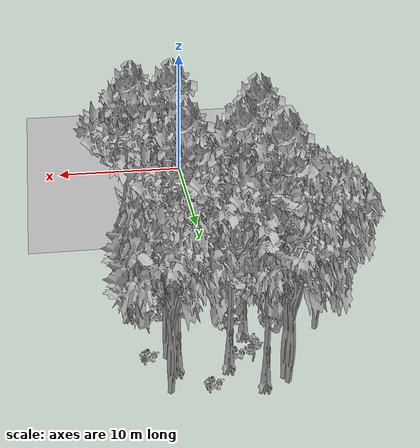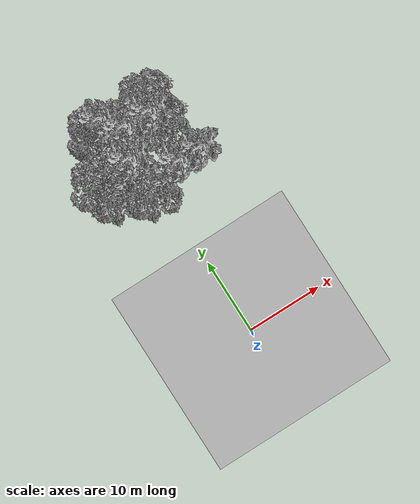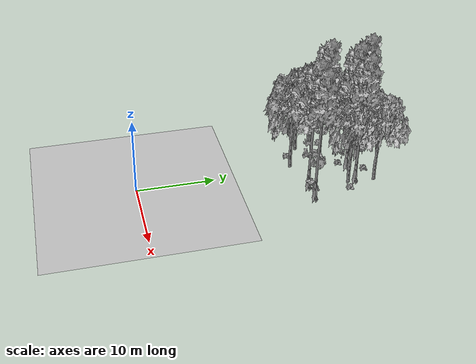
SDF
<sdf version="1.7">
 <world name="default">
  <model name="ground_plane">
   <static>1</static>
   <link name="link">
    <collision name="collision">
     <pose>-50 0 0 0 -0 0</pose>
     <geometry><plane><normal>0 0 1</normal><size>80 80</size></plane></geometry>
     <surface><contact><ode><min_depth>0.01</min_depth><max_vel>0</max_vel></ode></contact></surface>
    </collision>
    <visual name="grass">
     <cast_shadows>0</cast_shadows>
     <geometry>
      <mesh>
       <scale>0.46714285714285714 0.46714285714285714 0.1</scale>
       <uri>file://grass_plane/meshes/grass_plane.dae</uri>
      </mesh>
     </geometry>
    </visual>
   </link>
  </model>
  <model name="Tree 9">
   <static>1</static>
   <pose>4.20310431743556 26.323700282341363 0 1.57079 -0 0</pose>
   <link name="link">
    <collision name="collision">
     <geometry><mesh><scale>3.5 5 3.5</scale><uri>model://tree_2/meshes/tree_2.obj</uri></mesh></geometry>
    </collision>
    <visual name="visual">
     <geometry><mesh><scale>3.5 5 3.5</scale><uri>model://tree_2/meshes/tree_2.obj</uri></mesh></geometry>
    </visual>
   </link>
  </model>
  <model name="Tree 42">
   <static>1</static>
   <pose>4.334344160294933 29.720558247666077 0 1.57079 -0 0</pose>
   <link name="link">
    <collision name="collision">
     <geometry><mesh><scale>3.5 5 3.5</scale><uri>model://tree_2/meshes/tree_2.obj</uri></mesh></geometry>
    </collision>
    <visual name="visual">
     <geometry><mesh><scale>3.5 5 3.5</scale><uri>model://tree_2/meshes/tree_2.obj</uri></mesh></geometry>
    </visual>
   </link>
  </model>
  <model name="Tree 131">
   <static>1</static>
   <pose>-1.1855709193471284 29.613246702547173 0 1.57079 -0 0</pose>
   <link name="link">
    <collision name="collision">
     <geometry><mesh><scale>3.5 5 3.5</scale><uri>model://tree_9/meshes/tree_9.obj</uri></mesh></geometry>
    </collision>
    <visual name="visual">
     <geometry><mesh><scale>3.5 5 3.5</scale><uri>model://tree_9/meshes/tree_9.obj</uri></mesh></geometry>
    </visual>
   </link>
  </model>
  <model name="Tree 136">
   <static>1</static>
   <pose>-0.6912097463750655 20.208502103878736 0 1.57079 -0 0</pose>
   <link name="link">
    <collision name="collision">
     <geometry><mesh><scale>3.5 5 3.5</scale><uri>model://tree_2/meshes/tree_2.obj</uri></mesh></geometry>
    </collision>
    <visual name="visual">
     <geometry><mesh><scale>3.5 5 3.5</scale><uri>model://tree_2/meshes/tree_2.obj</uri></mesh></geometry>
    </visual>
   </link>
  </model>
  <model name="Tree 152">
   <static>1</static>
   <pose>-0.833139650515939 24.281821733613555 0 1.57079 -0 0</pose>
   <link name="link">
    <collision name="collision">
     <geometry><mesh><scale>3.5 5 3.5</scale><uri>model://tree_9/meshes/tree_9.obj</uri></mesh></geometry>
    </collision>
    <visual name="visual">
     <geometry><mesh><scale>3.5 5 3.5</scale><uri>model://tree_9/meshes/tree_9.obj</uri></mesh></geometry>
    </visual>
   </link>
  </model>
  <model name="Tree 175">
   <static>1</static>
   <pose>0.622133506033137 27.52053535422644 0 1.57079 -0 0</pose>
   <link name="link">
    <collision name="collision">
     <geometry><mesh><scale>3.5 5 3.5</scale><uri>model://tree_9/meshes/tree_9.obj</uri></mesh></geometry>
    </collision>
    <visual name="visual">
     <geometry><mesh><scale>3.5 5 3.5</scale><uri>model://tree_9/meshes/tree_9.obj</uri></mesh></geometry>
    </visual>
   </link>
  </model>
  <model name="Tree 253">
   <static>1</static>
   <pose>-5.551509483812843 24.38612946989393 0 1.57079 -0 0</pose>
   <link name="link">
    <collision name="collision">
     <geometry><mesh><scale>3.5 5 3.5</scale><uri>model://tree_2/meshes/tree_2.obj</uri></mesh></geometry>
    </collision>
    <visual name="visual">
     <geometry><mesh><scale>3.5 5 3.5</scale><uri>model://tree_2/meshes/tree_2.obj</uri></mesh></geometry>
    </visual>
   </link>
  </model>
  <model name="Tree 305">
   <static>1</static>
   <pose>3.7655021501960917 21.225906187076724 0 1.57079 -0 0</pose>
   <link name="link">
    <collision name="collision">
     <geometry><mesh><scale>3.5 5 3.5</scale><uri>model://tree_9/meshes/tree_9.obj</uri></mesh></geometry>
    </collision>
    <visual name="visual">
     <geometry><mesh><scale>3.5 5 3.5</scale><uri>model://tree_9/meshes/tree_9.obj</uri></mesh></geometry>
    </visual>
   </link>
  </model>
  <model name="Tree 318">
   <static>1</static>
   <pose>-4.39805449372772 22.125558456361787 0 1.57079 -0 0</pose>
   <link name="link">
    <collision name="collision">
     <geometry><mesh><scale>3.5 5 3.5</scale><uri>model://tree_2/meshes/tree_2.obj</uri></mesh></geometry>
    </collision>
    <visual name="visual">
     <geometry><mesh><scale>3.5 5 3.5</scale><uri>model://tree_2/meshes/tree_2.obj</uri></mesh></geometry>
    </visual>
   </link>
  </model>
  <model name="Tree 344">
   <static>1</static>
   <pose>-2.4424444885703167 29.21625959878523 0 1.57079 -0 0</pose>
   <link name="link">
    <collision name="collision">
     <geometry><mesh><scale>3.5 5 3.5</scale><uri>model://tree_2/meshes/tree_2.obj</uri></mesh></geometry>
    </collision>
    <visual name="visual">
     <geometry><mesh><scale>3.5 5 3.5</scale><uri>model://tree_2/meshes/tree_2.obj</uri></mesh></geometry>
    </visual>
   </link>
  </model>
  <model name="Tree 353">
   <static>1</static>
   <pose>3.75577357296293 27.471957460692124 0 1.57079 -0 0</pose>
   <link name="link">
    <collision name="collision">
     <geometry><mesh><scale>3.5 5 3.5</scale><uri>model://tree_9/meshes/tree_9.obj</uri></mesh></geometry>
    </collision>
    <visual name="visual">
     <geometry><mesh><scale>3.5 5 3.5</scale><uri>model://tree_9/meshes/tree_9.obj</uri></mesh></geometry>
    </visual>
   </link>
  </model>
  <model name="Tree 554">
   <static>1</static>
   <pose>-2.644583770762452 29.631251733190112 0 1.57079 -0 0</pose>
   <link name="link">
    <collision name="collision">
     <geometry><mesh><scale>3.5 5 3.5</scale><uri>model://tree_2/meshes/tree_2.obj</uri></mesh></geometry>
    </collision>
    <visual name="visual">
     <geometry><mesh><scale>3.5 5 3.5</scale><uri>model://tree_2/meshes/tree_2.obj</uri></mesh></geometry>
    </visual>
   </link>
  </model>
  <model name="Tree 578">
   <static>1</static>
   <pose>-3.2358674886523744 24.02075637316561 0 1.57079 -0 0</pose>
   <link name="link">
    <collision name="collision">
     <geometry><mesh><scale>3.5 5 3.5</scale><uri>model://tree_2/meshes/tree_2.obj</uri></mesh></geometry>
    </collision>
    <visual name="visual">
     <geometry><mesh><scale>3.5 5 3.5</scale><uri>model://tree_2/meshes/tree_2.obj</uri></mesh></geometry>
    </visual>
   </link>
  </model>
  <model name="Tree 586">
   <static>1</static>
   <pose>6.147490637460351 21.245880079131723 0 1.57079 -0 0</pose>
   <link name="link">
    <collision name="collision">
     <geometry><mesh><scale>3.5 5 3.5</scale><uri>model://tree_9/meshes/tree_9.obj</uri></mesh></geometry>
    </collision>
    <visual name="visual">
     <geometry><mesh><scale>3.5 5 3.5</scale><uri>model://tree_9/meshes/tree_9.obj</uri></mesh></geometry>
    </visual>
   </link>
  </model>
  <model name="Bush 4">
   <static>1</static>
   <pose>-0.8553829749751785 27.457372983439484 0 1.57079 -0 0</pose>
   <link name="link">
    <collision name="collision">
     <geometry><mesh><scale>2 2 2</scale><uri>model://bush_5/meshes/bush_5.obj</uri></mesh></geometry>
     <surface><contact><collide_without_contact>false</collide_without_contact></contact></surface>
    </collision>
    <visual name="visual">
     <geometry><mesh><scale>2 2 2</scale><uri>model://bush_5/meshes/bush_5.obj</uri></mesh></geometry>
    </visual>
   </link>
  </model>
  <model name="Bush 75">
   <static>1</static>
   <pose>0.16329691556945392 23.870624987766185 0 1.57079 -0 0</pose>
   <link name="link">
    <collision name="collision">
     <geometry><mesh><scale>2 2 2</scale><uri>model://bush_1/meshes/bush_1.obj</uri></mesh></geometry>
     <surface><contact><collide_without_contact>false</collide_without_contact></contact></surface>
    </collision>
    <visual name="visual">
     <geometry><mesh><scale>2 2 2</scale><uri>model://bush_1/meshes/bush_1.obj</uri></mesh></geometry>
    </visual>
   </link>
  </model>
  <model name="Bush 155">
   <static>1</static>
   <pose>1.8657785008621772 29.3663498959737 0 1.57079 -0 0</pose>
   <link name="link">
    <collision name="collision">
     <geometry><mesh><scale>2 2 2</scale><uri>model://bush_2/meshes/bush_2.obj</uri></mesh></geometry>
     <surface><contact><collide_without_contact>false</collide_without_contact></contact></surface>
    </collision>
    <visual name="visual">
     <geometry><mesh><scale>2 2 2</scale><uri>model://bush_2/meshes/bush_2.obj</uri></mesh></geometry>
    </visual>
   </link>
  </model>
  <model name="Bush 236">
   <static>1</static>
   <pose>4.218720549960068 21.344476906865346 0 1.57079 -0 0</pose>
   <link name="link">
    <collision name="collision">
     <geometry><mesh><scale>2 2 2</scale><uri>model://bush_0/meshes/bush_0.obj</uri></mesh></geometry>
     <surface><contact><collide_without_contact>false</collide_without_contact></contact></surface>
    </collision>
    <visual name="visual">
     <geometry><mesh><scale>2 2 2</scale><uri>model://bush_0/meshes/bush_0.obj</uri></mesh></geometry>
    </visual>
   </link>
  </model>
  <model name="Bush 280">
   <static>1</static>
   <pose>-2.601562477291772 23.09601544135753 0 1.57079 -0 0</pose>
   <link name="link">
    <collision name="collision">
     <geometry><mesh><scale>2 2 2</scale><uri>model://bush_2/meshes/bush_2.obj</uri></mesh></geometry>
     <surface><contact><collide_without_contact>false</collide_without_contact></contact></surface>
    </collision>
    <visual name="visual">
     <geometry><mesh><scale>2 2 2</scale><uri>model://bush_2/meshes/bush_2.obj</uri></mesh></geometry>
    </visual>
   </link>
  </model>
  <model name="Bush 405">
   <static>1</static>
   <pose>4.61424358066553 21.842173673051704 0 1.57079 -0 0</pose>
   <link name="link">
    <collision name="collision">
     <geometry><mesh><scale>2 2 2</scale><uri>model://bush_2/meshes/bush_2.obj</uri></mesh></geometry>
     <surface><contact><collide_without_contact>false</collide_without_contact></contact></surface>
    </collision>
    <visual name="visual">
     <geometry><mesh><scale>2 2 2</scale><uri>model://bush_2/meshes/bush_2.obj</uri></mesh></geometry>
    </visual>
   </link>
  </model>
  <model name="Bush 492">
   <static>1</static>
   <pose>5.360649836767671 26.151520310307774 0 1.57079 -0 0</pose>
   <link name="link">
    <collision name="collision">
     <geometry><mesh><scale>2 2 2</scale><uri>model://bush_2/meshes/bush_2.obj</uri></mesh></geometry>
     <surface><contact><collide_without_contact>false</collide_without_contact></contact></surface>
    </collision>
    <visual name="visual">
     <geometry><mesh><scale>2 2 2</scale><uri>model://bush_2/meshes/bush_2.obj</uri></mesh></geometry>
    </visual>
   </link>
  </model>
  <model name="Bush 556">
   <static>1</static>
   <pose>-0.008587578421696662 26.560841655357322 0 1.57079 -0 0</pose>
   <link name="link">
    <collision name="collision">
     <geometry><mesh><scale>2 2 2</scale><uri>model://bush_2/meshes/bush_2.obj</uri></mesh></geometry>
     <surface><contact><collide_without_contact>false</collide_without_contact></contact></surface>
    </collision>
    <visual name="visual">
     <geometry><mesh><scale>2 2 2</scale><uri>model://bush_2/meshes/bush_2.obj</uri></mesh></geometry>
    </visual>
   </link>
  </model>
  <model name="Bush 612">
   <static>1</static>
   <pose>-2.967988496746024 20.44779929597226 0 1.57079 -0 0</pose>
   <link name="link">
    <collision name="collision">
     <geometry><mesh><scale>2 2 2</scale><uri>model://bush_2/meshes/bush_2.obj</uri></mesh></geometry>
     <surface><contact><collide_without_contact>false</collide_without_contact></contact></surface>
    </collision>
    <visual name="visual">
     <geometry><mesh><scale>2 2 2</scale><uri>model://bush_2/meshes/bush_2.obj</uri></mesh></geometry>
    </visual>
   </link>
  </model>
 </world>
</sdf>
